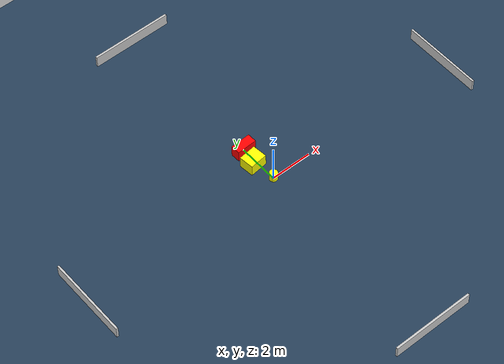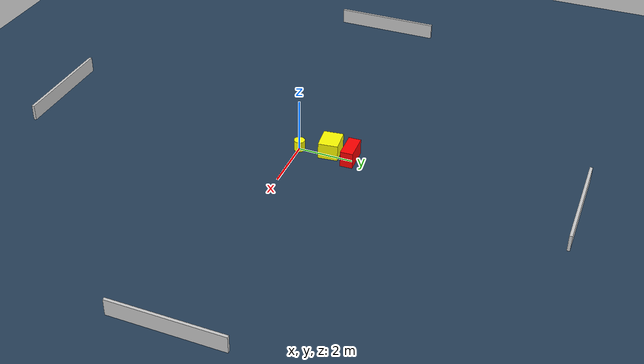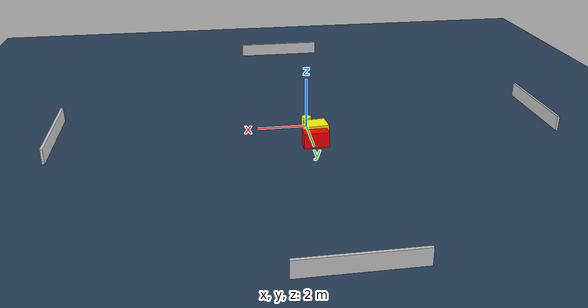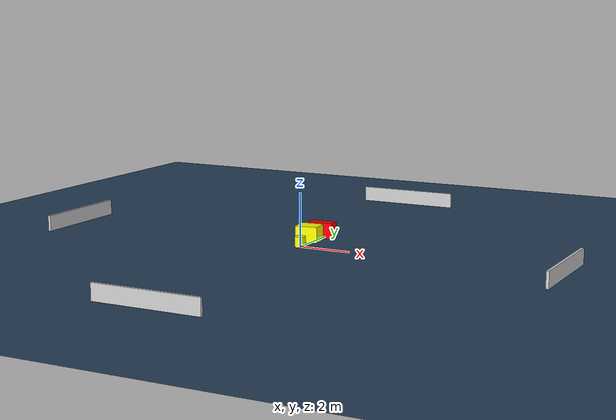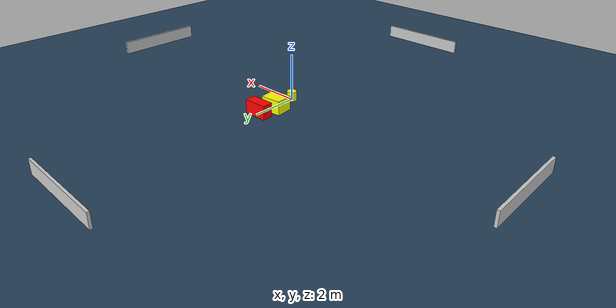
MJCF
<?xml version="1.0" ?>
<mujoco model="generated_environment">
  <option timestep="0.01" integrator="RK4" cone="elliptic"/>
  <default>
    <geom density="1"/>
  </default>
  <asset>
    <texture builtin="gradient" height="3072" name="skybox" rgb1="0.3 0.5 0.7" rgb2="0 0 0" type="skybox" width="512"/>
    <texture builtin="checker" height="300" name="groundplane" rgb1="0.2 0.3 0.4" rgb2="0.1 0.2 0.3" type="2d" width="300"/>
    <material name="groundplane" reflectance="0.2" texrepeat="5 5" texture="groundplane"/>
  </asset>
  <worldbody>
    <light dir="0 0 -1" directional="true" pos="0 0 1.5"/>
    <geom condim="3" friction="0.5 0.005 0.001" material="groundplane" name="floor" pos="0 0 0" size="0 0 0.05" type="plane"/>
    <body name="walls">
      <geom name="wall_1" condim="4" pos="-10.0 0.0 0.3" rgba="0.800000011920929 0.800000011920929 0.800000011920929 1.0" size="0.05 2.0 0.3" type="box"/>
      <geom name="wall_2" condim="4" pos="10.0 0.0 0.3" rgba="0.800000011920929 0.800000011920929 0.800000011920929 1.0" size="0.05 2.0 0.3" type="box"/>
      <geom name="wall_3" condim="4" pos="0.0 -10.0 0.3" rgba="0.800000011920929 0.800000011920929 0.800000011920929 1.0" size="2.0 0.05 0.3" type="box"/>
      <geom name="wall_4" condim="4" pos="0.0 10.0 0.3" rgba="0.800000011920929 0.800000011920929 0.800000011920929 1.0" size="2.0 0.05 0.3" type="box"/>
    </body>
    <body name="robot">
      <joint name="joint_x" type="slide" pos="0 0 0" axis="1 0 0"/>
      <joint name="joint_y" type="slide" pos="0 0 0" axis="0 1 0"/>
      <geom name="robot" type="cylinder" pos="0.0 0.0 0.2" size="0.2 0.2 0.0" mass="5.0" friction="1.0 0.005 0.0001" condim="4" rgba="1.0 1.0 0.0 1.0"/>
    </body>
    <body name="obstacle_1_movable">
      <geom name="obstacle_1_movable" condim="4" pos="-0.2141860677629647 1.1222610705951106 0.3" euler="0 0 6.170963010724497" friction="0.0 0.005 0.001" rgba="1.0 1.0 0.0 1.0" size="0.4318229347398934 0.35925305465702034 0.3" type="box" mass="0.1"/>
      <joint type="free"/>
    </body>
    <body name="obstacle_2_static">
      <geom name="obstacle_2_static" condim="4" pos="-0.06838192024538639 1.9288333036493734 0.3" euler="0 0 92.01192728838906" friction="0.0 0.005 0.001" rgba="1.0 0.0 0.0 1.0" size="0.2276678623387357 0.4919630405221071 0.3" type="box"/>
    </body>
  </worldbody>
  <actuator>
    <motor name="actuator_x" joint="joint_x" gear="1" ctrlrange="-1 1"/>
    <motor name="actuator_y" joint="joint_y" gear="1" ctrlrange="-1 1"/>
  </actuator>
</mujoco>
